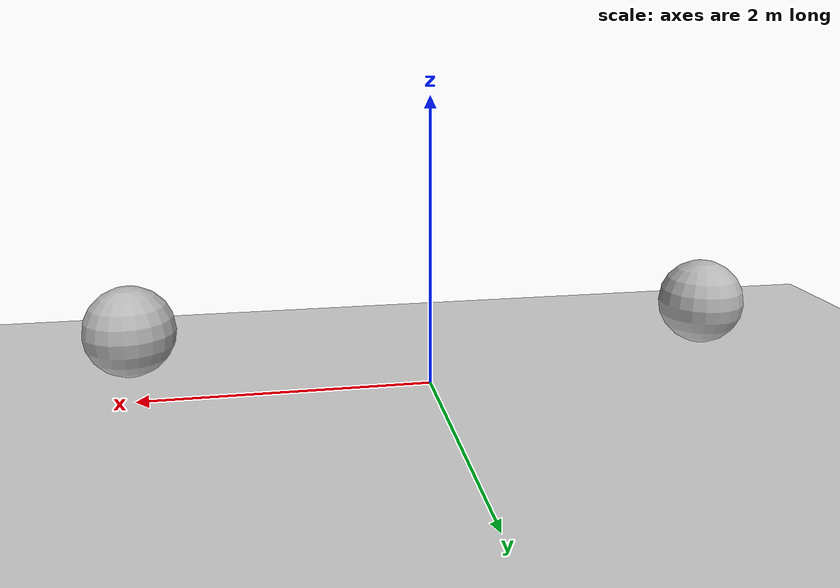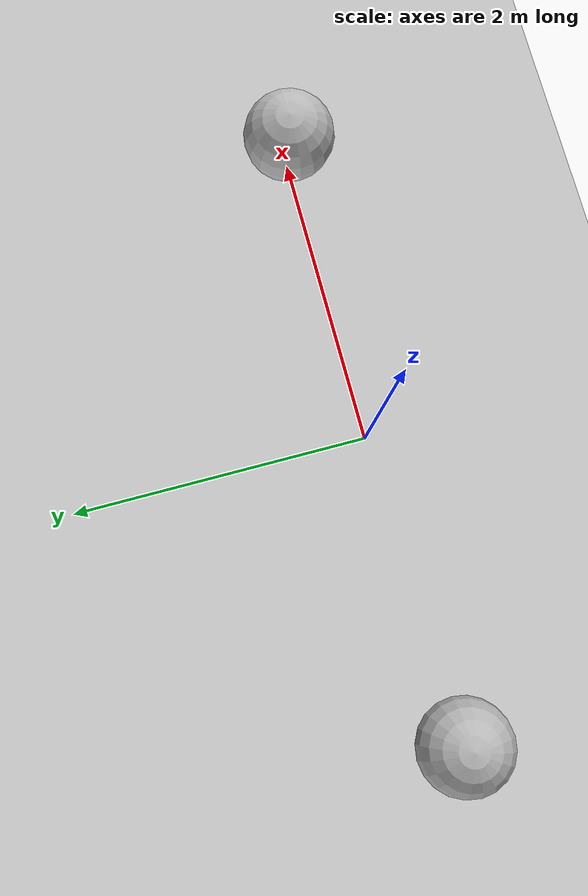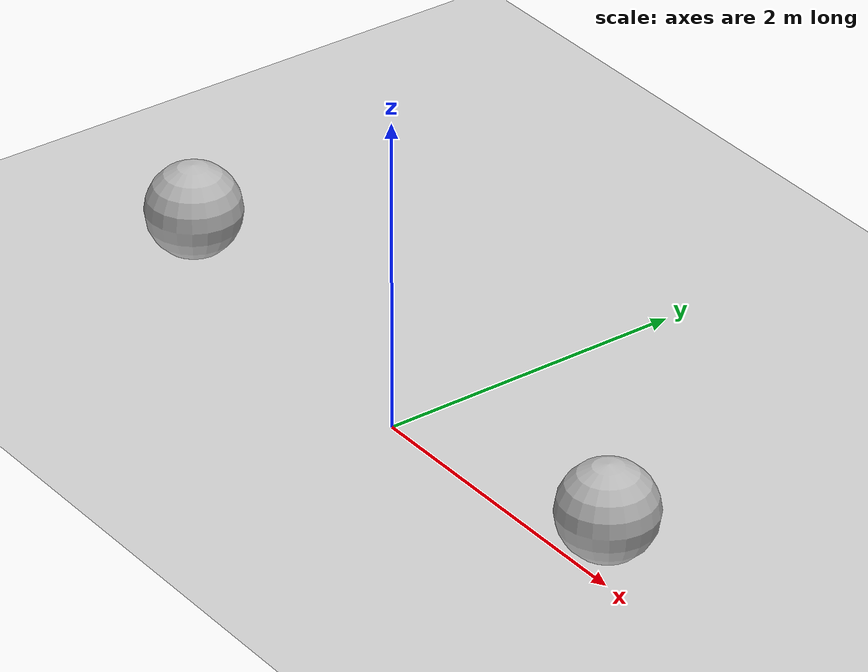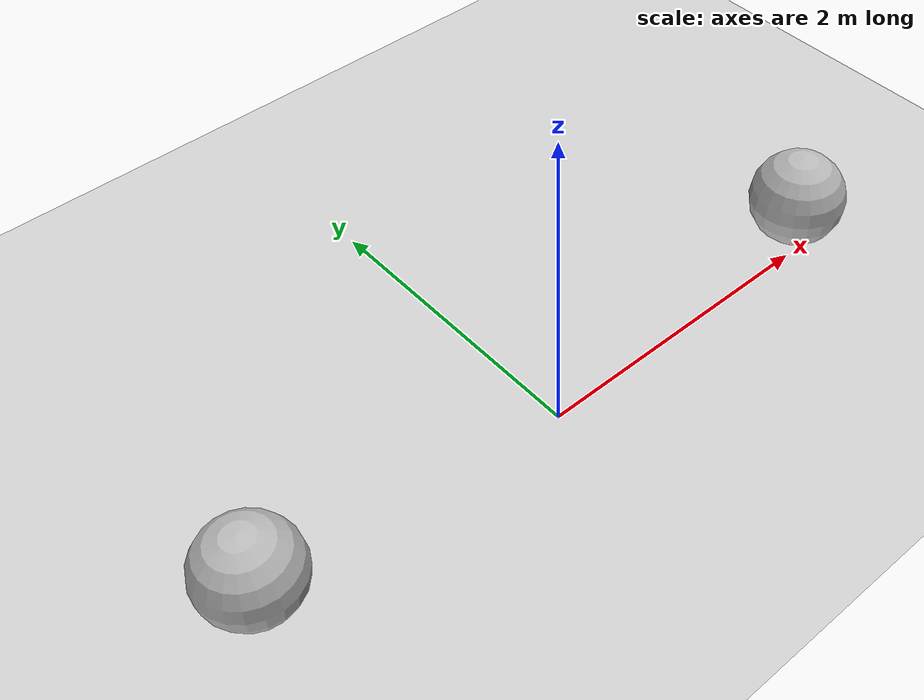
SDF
<sdf version="1.6">
  <world name="default">

    <!-- Ground -->
    <include>
      <uri>model://ground_plane</uri>
    </include>

    <include>
      <uri>model://sun</uri>
    </include>

    <!-- Sphere 1 -->
    <model name="sphere1">
      <pose>-2 0 0.5 0 0 0</pose>
      <link name="link">
        <inertial>
          <mass>1.0</mass>
        </inertial>
        <collision name="collision">
          <geometry>
            <sphere><radius>0.3</radius></sphere>
          </geometry>
        </collision>
        <visual name="visual">
          <geometry>
            <sphere><radius>0.3</radius></sphere>
          </geometry>
        </visual>
      </link>

      <!-- Plugin để nhận cmd_vel -->
      <plugin name="move" filename="libgazebo_ros_planar_move.so">
        <ros>
          <namespace>/sphere1</namespace>
        </ros>
      </plugin>
    </model>

    <!-- Sphere 2 -->
    <model name="sphere2">
      <pose>2 0 0.5 0 0 0</pose>
      <link name="link">
        <inertial>
          <mass>1.0</mass>
        </inertial>
        <collision name="collision">
          <geometry>
            <sphere><radius>0.3</radius></sphere>
          </geometry>
        </collision>
        <visual name="visual">
          <geometry>
            <sphere><radius>0.3</radius></sphere>
          </geometry>
        </visual>
      </link>

      <plugin name="move" filename="libgazebo_ros_planar_move.so">
        <ros>
          <namespace>/sphere2</namespace>
        </ros>
      </plugin>
    </model>

  </world>
</sdf>
